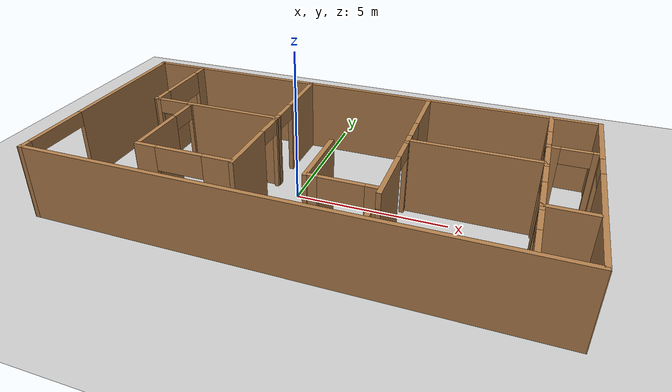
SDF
<sdf version="1.7">
 <world name="default">
  <light name="sun" type="directional">
   <pose>0 0 10 0 -0 0</pose>
   <diffuse>0.8 0.8 0.8 1</diffuse>
   <specular>0.2 0.2 0.2 1</specular>
   <attenuation>
    <range>1000</range>
    <constant>0.9</constant>
    <linear>0.01</linear>
    <quadratic>0.001</quadratic>
   </attenuation>
   <direction>-0.5 0.1 -0.9</direction>
   <spot><inner_angle>0</inner_angle><outer_angle>0</outer_angle><falloff>0</falloff></spot>
  </light>
  <model name="ground_plane">
   <static>1</static>
   <link name="link">
    <collision name="collision">
     <geometry><plane><normal>0 0 1</normal><size>100 100</size></plane></geometry>
     <surface>
      <contact><collide_bitmask>65535</collide_bitmask></contact>
      <friction><ode><mu>100</mu><mu2>50</mu2></ode></friction>
     </surface>
    </collision>
    <visual name="visual">
     <cast_shadows>0</cast_shadows>
     <geometry><plane><normal>0 0 1</normal><size>100 100</size></plane></geometry>
     <material>
      <script><uri>file://media/materials/scripts/gazebo.material</uri><name>Gazebo/Grey</name></script>
     </material>
    </visual>
   </link>
  </model>
  <gravity>0 0 -9.8</gravity>
  <magnetic_field>6e-06 2.3e-05 -4.2e-05</magnetic_field>
  <atmosphere type="adiabatic"/>
  <physics type="ode">
   <max_step_size>0.001</max_step_size>
   <real_time_factor>1</real_time_factor>
   <real_time_update_rate>1000</real_time_update_rate>
  </physics>
  <scene><ambient>0.4 0.4 0.4 1</ambient><background>0.7 0.7 0.7 1</background><shadows>1</shadows></scene>
  <audio><device>default</device></audio>
  <spherical_coordinates>
   <surface_model>EARTH_WGS84</surface_model>
   <latitude_deg>0</latitude_deg>
   <longitude_deg>0</longitude_deg>
   <elevation>0</elevation>
   <heading_deg>0</heading_deg>
  </spherical_coordinates>
  <model name="obstacles.world">
   <pose>0.850159 -0.132797 0 0 -0 0</pose>
   <link name="Wall_18">
    <collision name="Wall_18_Collision">
     <geometry><box><size>16.25 0.15 2.5</size></box></geometry>
     <pose>0 0 1.25 0 -0 0</pose>
    </collision>
    <visual name="Wall_18_Visual">
     <pose>0 0 1.25 0 -0 0</pose>
     <geometry><box><size>16.25 0.15 2.5</size></box></geometry>
     <material>
      <script><uri>file://media/materials/scripts/gazebo.material</uri><name>Gazebo/Wood</name></script>
      <ambient>1 0.764706 0.305882 1</ambient>
     </material>
     <meta><layer>0</layer></meta>
    </visual>
    <pose>0.007217 3.8 0 0 -0 0</pose>
   </link>
   <link name="Wall_19">
    <pose>8.07733 -0 0 0 -0 -1.5708</pose>
    <visual name="Wall_19_Visual_0">
     <pose>-2.6418 0 1.25 0 -0 0</pose>
     <geometry><box><size>2.46639 0.15 2.5</size></box></geometry>
     <material>
      <script><uri>file://media/materials/scripts/gazebo.material</uri><name>Gazebo/Wood</name></script>
      <ambient>1 0.764706 0.305882 1</ambient>
     </material>
     <meta><layer>0</layer></meta>
    </visual>
    <collision name="Wall_19_Collision_0">
     <geometry><box><size>2.46639 0.15 2.5</size></box></geometry>
     <pose>-2.6418 0 1.25 0 -0 0</pose>
    </collision>
    <visual name="Wall_19_Visual_1">
     <pose>1.6832 0 1.25 0 -0 0</pose>
     <geometry><box><size>4.38361 0.15 2.5</size></box></geometry>
     <material>
      <script><uri>file://media/materials/scripts/gazebo.material</uri><name>Gazebo/Wood</name></script>
      <ambient>1 0.764706 0.305882 1</ambient>
     </material>
     <meta><layer>0</layer></meta>
    </visual>
    <collision name="Wall_19_Collision_1">
     <geometry><box><size>4.38361 0.15 2.5</size></box></geometry>
     <pose>1.6832 0 1.25 0 -0 0</pose>
    </collision>
    <visual name="Wall_19_Visual_2">
     <pose>-0.958605 0 2.25 0 -0 0</pose>
     <geometry><box><size>0.9 0.15 0.5</size></box></geometry>
     <material>
      <script><uri>file://media/materials/scripts/gazebo.material</uri><name>Gazebo/Wood</name></script>
      <ambient>1 0.764706 0.305882 1</ambient>
     </material>
     <meta><layer>0</layer></meta>
    </visual>
    <collision name="Wall_19_Collision_2">
     <geometry><box><size>0.9 0.15 0.5</size></box></geometry>
     <pose>-0.958605 0 2.25 0 -0 0</pose>
    </collision>
   </link>
   <link name="Wall_20">
    <collision name="Wall_20_Collision">
     <geometry><box><size>16.2845 0.15 2.5</size></box></geometry>
     <pose>0 0 1.25 0 -0 0</pose>
    </collision>
    <visual name="Wall_20_Visual">
     <pose>0 0 1.25 0 -0 0</pose>
     <geometry><box><size>16.2845 0.15 2.5</size></box></geometry>
     <material>
      <script><uri>file://media/materials/scripts/gazebo.material</uri><name>Gazebo/Wood</name></script>
      <ambient>1 0.764706 0.305882 1</ambient>
     </material>
     <meta><layer>0</layer></meta>
    </visual>
    <pose>-0.010058 -3.8 0 0 -0 3.14159</pose>
   </link>
   <link name="Wall_21">
    <pose>-8.05722 -0 0 0 -0 1.5708</pose>
    <visual name="Wall_21_Visual_0">
     <pose>-3.66782 0 1.25 0 -0 0</pose>
     <geometry><box><size>0.414352 0.15 2.5</size></box></geometry>
     <material>
      <script><uri>file://media/materials/scripts/gazebo.material</uri><name>Gazebo/Wood</name></script>
      <ambient>1 0.764706 0.305882 1</ambient>
     </material>
     <meta><layer>0</layer></meta>
    </visual>
    <collision name="Wall_21_Collision_0">
     <geometry><box><size>0.414352 0.15 2.5</size></box></geometry>
     <pose>-3.66782 0 1.25 0 -0 0</pose>
    </collision>
    <visual name="Wall_21_Visual_1">
     <pose>1.33098 0 1.25 0 -0 0</pose>
     <geometry><box><size>5.08804 0.15 2.5</size></box></geometry>
     <material>
      <script><uri>file://media/materials/scripts/gazebo.material</uri><name>Gazebo/Wood</name></script>
      <ambient>1 0.764706 0.305882 1</ambient>
     </material>
     <meta><layer>0</layer></meta>
    </visual>
    <collision name="Wall_21_Collision_1">
     <geometry><box><size>5.08804 0.15 2.5</size></box></geometry>
     <pose>1.33098 0 1.25 0 -0 0</pose>
    </collision>
    <visual name="Wall_21_Visual_2">
     <pose>-2.33684 0 2.25 0 -0 0</pose>
     <geometry><box><size>2.24761 0.15 0.5</size></box></geometry>
     <material>
      <script><uri>file://media/materials/scripts/gazebo.material</uri><name>Gazebo/Wood</name></script>
      <ambient>1 0.764706 0.305882 1</ambient>
     </material>
     <meta><layer>0</layer></meta>
    </visual>
    <collision name="Wall_21_Collision_2">
     <geometry><box><size>2.24761 0.15 0.5</size></box></geometry>
     <pose>-2.33684 0 2.25 0 -0 0</pose>
    </collision>
   </link>
   <link name="Wall_24">
    <pose>-6.28501 2.23251 0 0 -0 -1.5708</pose>
    <visual name="Wall_24_Visual_0">
     <pose>-1.30855 0 1.25 0 -0 0</pose>
     <geometry><box><size>0.632901 0.15 2.5</size></box></geometry>
     <material>
      <script><uri>file://media/materials/scripts/gazebo.material</uri><name>Gazebo/Wood</name></script>
      <ambient>1 1 1 1</ambient>
     </material>
     <meta><layer>0</layer></meta>
    </visual>
    <collision name="Wall_24_Collision_0">
     <geometry><box><size>0.632901 0.15 2.5</size></box></geometry>
     <pose>-1.30855 0 1.25 0 -0 0</pose>
    </collision>
    <visual name="Wall_24_Visual_1">
     <pose>0.31645 0 0.45 0 -0 0</pose>
     <geometry><box><size>2.6171 0.15 0.9</size></box></geometry>
     <material>
      <script><uri>file://media/materials/scripts/gazebo.material</uri><name>Gazebo/Wood</name></script>
      <ambient>1 1 1 1</ambient>
     </material>
     <meta><layer>0</layer></meta>
    </visual>
    <collision name="Wall_24_Collision_1">
     <geometry><box><size>2.6171 0.15 0.9</size></box></geometry>
     <pose>0.31645 0 0.45 0 -0 0</pose>
    </collision>
    <visual name="Wall_24_Visual_2">
     <pose>1.25178 0 1.7 0 -0 0</pose>
     <geometry><box><size>0.746441 0.15 1.6</size></box></geometry>
     <material>
      <script><uri>file://media/materials/scripts/gazebo.material</uri><name>Gazebo/Wood</name></script>
      <ambient>1 1 1 1</ambient>
     </material>
     <meta><layer>0</layer></meta>
    </visual>
    <collision name="Wall_24_Collision_2">
     <geometry><box><size>0.746441 0.15 1.6</size></box></geometry>
     <pose>1.25178 0 1.7 0 -0 0</pose>
    </collision>
    <visual name="Wall_24_Visual_3">
     <pose>-0.05677 0 2.1 0 -0 0</pose>
     <geometry><box><size>1.87066 0.15 0.8</size></box></geometry>
     <material>
      <script><uri>file://media/materials/scripts/gazebo.material</uri><name>Gazebo/Wood</name></script>
      <ambient>1 1 1 1</ambient>
     </material>
     <meta><layer>0</layer></meta>
    </visual>
    <collision name="Wall_24_Collision_3">
     <geometry><box><size>1.87066 0.15 0.8</size></box></geometry>
     <pose>-0.05677 0 2.1 0 -0 0</pose>
    </collision>
   </link>
   <link name="Wall_25">
    <pose>-4.02814 0.672453 0 0 -0 -0.004417</pose>
    <visual name="Wall_25_Visual_0">
     <pose>-2.23196 0 1.25 0 -0 0</pose>
     <geometry><box><size>0.240097 0.15 2.5</size></box></geometry>
     <material>
      <script><uri>file://media/materials/scripts/gazebo.material</uri><name>Gazebo/Wood</name></script>
      <ambient>1 1 1 1</ambient>
     </material>
     <meta><layer>0</layer></meta>
    </visual>
    <collision name="Wall_25_Collision_0">
     <geometry><box><size>0.240097 0.15 2.5</size></box></geometry>
     <pose>-2.23196 0 1.25 0 -0 0</pose>
    </collision>
    <visual name="Wall_25_Visual_1">
     <pose>0.650501 0 1.25 0 -0 0</pose>
     <geometry><box><size>3.40302 0.15 2.5</size></box></geometry>
     <material>
      <script><uri>file://media/materials/scripts/gazebo.material</uri><name>Gazebo/Wood</name></script>
      <ambient>1 1 1 1</ambient>
     </material>
     <meta><layer>0</layer></meta>
    </visual>
    <collision name="Wall_25_Collision_1">
     <geometry><box><size>3.40302 0.15 2.5</size></box></geometry>
     <pose>0.650501 0 1.25 0 -0 0</pose>
    </collision>
    <visual name="Wall_25_Visual_2">
     <pose>-1.58146 0 2.25 0 -0 0</pose>
     <geometry><box><size>1.0609 0.15 0.5</size></box></geometry>
     <material>
      <script><uri>file://media/materials/scripts/gazebo.material</uri><name>Gazebo/Wood</name></script>
      <ambient>1 1 1 1</ambient>
     </material>
     <meta><layer>0</layer></meta>
    </visual>
    <collision name="Wall_25_Collision_2">
     <geometry><box><size>1.0609 0.15 0.5</size></box></geometry>
     <pose>-1.58146 0 2.25 0 -0 0</pose>
    </collision>
   </link>
   <link name="Wall_26">
    <pose>-1.77126 2.2124 0 0 -0 1.5708</pose>
    <visual name="Wall_26_Visual_0">
     <pose>-1.49184 0 1.25 0 -0 0</pose>
     <geometry><box><size>0.266317 0.15 2.5</size></box></geometry>
     <material>
      <script><uri>file://media/materials/scripts/gazebo.material</uri><name>Gazebo/Wood</name></script>
      <ambient>1 1 1 1</ambient>
     </material>
     <meta><layer>0</layer></meta>
    </visual>
    <collision name="Wall_26_Collision_0">
     <geometry><box><size>0.266317 0.15 2.5</size></box></geometry>
     <pose>-1.49184 0 1.25 0 -0 0</pose>
    </collision>
    <visual name="Wall_26_Visual_1">
     <pose>0.583158 0 1.25 0 -0 0</pose>
     <geometry><box><size>2.08368 0.15 2.5</size></box></geometry>
     <material>
      <script><uri>file://media/materials/scripts/gazebo.material</uri><name>Gazebo/Wood</name></script>
      <ambient>1 1 1 1</ambient>
     </material>
     <meta><layer>0</layer></meta>
    </visual>
    <collision name="Wall_26_Collision_1">
     <geometry><box><size>2.08368 0.15 2.5</size></box></geometry>
     <pose>0.583158 0 1.25 0 -0 0</pose>
    </collision>
    <visual name="Wall_26_Visual_2">
     <pose>-0.908683 0 2.25 0 -0 0</pose>
     <geometry><box><size>0.9 0.15 0.5</size></box></geometry>
     <material>
      <script><uri>file://media/materials/scripts/gazebo.material</uri><name>Gazebo/Wood</name></script>
      <ambient>1 1 1 1</ambient>
     </material>
     <meta><layer>0</layer></meta>
    </visual>
    <collision name="Wall_26_Collision_2">
     <geometry><box><size>0.9 0.15 0.5</size></box></geometry>
     <pose>-0.908683 0 2.25 0 -0 0</pose>
    </collision>
   </link>
   <link name="Wall_28">
    <pose>-4.95183 -0.89914 0 0 -0 -1.57757</pose>
    <visual name="Wall_28_Visual_0">
     <pose>-1.48303 0 1.25 0 -0 0</pose>
     <geometry><box><size>0.154694 0.15 2.5</size></box></geometry>
     <material>
      <script><uri>file://media/materials/scripts/gazebo.material</uri><name>Gazebo/Wood</name></script>
      <ambient>1 1 1 1</ambient>
     </material>
     <meta><layer>0</layer></meta>
    </visual>
    <collision name="Wall_28_Collision_0">
     <geometry><box><size>0.154694 0.15 2.5</size></box></geometry>
     <pose>-1.48303 0 1.25 0 -0 0</pose>
    </collision>
    <visual name="Wall_28_Visual_1">
     <pose>0.527347 0 1.25 0 -0 0</pose>
     <geometry><box><size>2.06606 0.15 2.5</size></box></geometry>
     <material>
      <script><uri>file://media/materials/scripts/gazebo.material</uri><name>Gazebo/Wood</name></script>
      <ambient>1 1 1 1</ambient>
     </material>
     <meta><layer>0</layer></meta>
    </visual>
    <collision name="Wall_28_Collision_1">
     <geometry><box><size>2.06606 0.15 2.5</size></box></geometry>
     <pose>0.527347 0 1.25 0 -0 0</pose>
    </collision>
    <visual name="Wall_28_Visual_2">
     <pose>-0.955681 0 2.25 0 -0 0</pose>
     <geometry><box><size>0.9 0.15 0.5</size></box></geometry>
     <material>
      <script><uri>file://media/materials/scripts/gazebo.material</uri><name>Gazebo/Wood</name></script>
      <ambient>1 1 1 1</ambient>
     </material>
     <meta><layer>0</layer></meta>
    </visual>
    <collision name="Wall_28_Collision_2">
     <geometry><box><size>0.9 0.15 0.5</size></box></geometry>
     <pose>-0.955681 0 2.25 0 -0 0</pose>
    </collision>
   </link>
   <link name="Wall_35">
    <pose>6.60167 2.75574 0 0 -0 -1.5708</pose>
    <visual name="Wall_35_Visual_0">
     <pose>-0.541344 0 1.25 0 -0 0</pose>
     <geometry><box><size>1.15583 0.15 2.5</size></box></geometry>
     <material>
      <script><uri>file://media/materials/scripts/gazebo.material</uri><name>Gazebo/Wood</name></script>
      <ambient>1 1 1 1</ambient>
     </material>
     <meta><layer>0</layer></meta>
    </visual>
    <collision name="Wall_35_Collision_0">
     <geometry><box><size>1.15583 0.15 2.5</size></box></geometry>
     <pose>-0.541344 0 1.25 0 -0 0</pose>
    </collision>
    <visual name="Wall_35_Visual_1">
     <pose>1.02792 0 1.25 0 -0 0</pose>
     <geometry><box><size>0.182688 0.15 2.5</size></box></geometry>
     <material>
      <script><uri>file://media/materials/scripts/gazebo.material</uri><name>Gazebo/Wood</name></script>
      <ambient>1 1 1 1</ambient>
     </material>
     <meta><layer>0</layer></meta>
    </visual>
    <collision name="Wall_35_Collision_1">
     <geometry><box><size>0.182688 0.15 2.5</size></box></geometry>
     <pose>1.02792 0 1.25 0 -0 0</pose>
    </collision>
    <visual name="Wall_35_Visual_2">
     <pose>0.486573 0 2.25 0 -0 0</pose>
     <geometry><box><size>0.9 0.15 0.5</size></box></geometry>
     <material>
      <script><uri>file://media/materials/scripts/gazebo.material</uri><name>Gazebo/Wood</name></script>
      <ambient>1 1 1 1</ambient>
     </material>
     <meta><layer>0</layer></meta>
    </visual>
    <collision name="Wall_35_Collision_2">
     <geometry><box><size>0.9 0.15 0.5</size></box></geometry>
     <pose>0.486573 0 2.25 0 -0 0</pose>
    </collision>
   </link>
   <link name="Wall_38">
    <pose>7.28989 1.69136 0 0 -0 0</pose>
    <visual name="Wall_38_Visual_0">
     <pose>-0.560613 0 1.25 0 -0 0</pose>
     <geometry><box><size>0.405224 0.15 2.5</size></box></geometry>
     <material>
      <script><uri>file://media/materials/scripts/gazebo.material</uri><name>Gazebo/Wood</name></script>
      <ambient>1 1 1 1</ambient>
     </material>
     <meta><layer>0</layer></meta>
    </visual>
    <collision name="Wall_38_Collision_0">
     <geometry><box><size>0.405224 0.15 2.5</size></box></geometry>
     <pose>-0.560613 0 1.25 0 -0 0</pose>
    </collision>
    <visual name="Wall_38_Visual_1">
     <pose>0.652612 0 1.25 0 -0 0</pose>
     <geometry><box><size>0.221226 0.15 2.5</size></box></geometry>
     <material>
      <script><uri>file://media/materials/scripts/gazebo.material</uri><name>Gazebo/Wood</name></script>
      <ambient>1 1 1 1</ambient>
     </material>
     <meta><layer>0</layer></meta>
    </visual>
    <collision name="Wall_38_Collision_1">
     <geometry><box><size>0.221226 0.15 2.5</size></box></geometry>
     <pose>0.652612 0 1.25 0 -0 0</pose>
    </collision>
    <visual name="Wall_38_Visual_2">
     <pose>0.091999 0 2.25 0 -0 0</pose>
     <geometry><box><size>0.9 0.15 0.5</size></box></geometry>
     <material>
      <script><uri>file://media/materials/scripts/gazebo.material</uri><name>Gazebo/Wood</name></script>
      <ambient>1 1 1 1</ambient>
     </material>
     <meta><layer>0</layer></meta>
    </visual>
    <collision name="Wall_38_Collision_2">
     <geometry><box><size>0.9 0.15 0.5</size></box></geometry>
     <pose>0.091999 0 2.25 0 -0 0</pose>
    </collision>
   </link>
   <link name="Wall_40">
    <pose>6.60466 -2.66255 0 0 -0 -1.5708</pose>
    <visual name="Wall_40_Visual_0">
     <pose>-0.905097 0 1.25 0 -0 0</pose>
     <geometry><box><size>0.339239 0.15 2.5</size></box></geometry>
     <material>
      <script><uri>file://media/materials/scripts/gazebo.material</uri><name>Gazebo/Wood</name></script>
      <ambient>1 1 1 1</ambient>
     </material>
     <meta><layer>0</layer></meta>
    </visual>
    <collision name="Wall_40_Collision_0">
     <geometry><box><size>0.339239 0.15 2.5</size></box></geometry>
     <pose>-0.905097 0 1.25 0 -0 0</pose>
    </collision>
    <visual name="Wall_40_Visual_1">
     <pose>0.619619 0 1.25 0 -0 0</pose>
     <geometry><box><size>0.910193 0.15 2.5</size></box></geometry>
     <material>
      <script><uri>file://media/materials/scripts/gazebo.material</uri><name>Gazebo/Wood</name></script>
      <ambient>1 1 1 1</ambient>
     </material>
     <meta><layer>0</layer></meta>
    </visual>
    <collision name="Wall_40_Collision_1">
     <geometry><box><size>0.910193 0.15 2.5</size></box></geometry>
     <pose>0.619619 0 1.25 0 -0 0</pose>
    </collision>
    <visual name="Wall_40_Visual_2">
     <pose>-0.285477 0 2.25 0 -0 0</pose>
     <geometry><box><size>0.9 0.15 0.5</size></box></geometry>
     <material>
      <script><uri>file://media/materials/scripts/gazebo.material</uri><name>Gazebo/Wood</name></script>
      <ambient>1 1 1 1</ambient>
     </material>
     <meta><layer>0</layer></meta>
    </visual>
    <collision name="Wall_40_Collision_2">
     <geometry><box><size>0.9 0.15 0.5</size></box></geometry>
     <pose>-0.285477 0 2.25 0 -0 0</pose>
    </collision>
   </link>
   <link name="Wall_42">
    <collision name="Wall_42_Collision">
     <geometry><box><size>1.5 0.15 2.5</size></box></geometry>
     <pose>0 0 1.25 0 -0 0</pose>
    </collision>
    <visual name="Wall_42_Visual">
     <pose>0 0 1.25 0 -0 0</pose>
     <geometry><box><size>1.5 0.15 2.5</size></box></geometry>
     <material>
      <script><uri>file://media/materials/scripts/gazebo.material</uri><name>Gazebo/Wood</name></script>
      <ambient>1 1 1 1</ambient>
     </material>
     <meta><layer>0</layer></meta>
    </visual>
    <pose>7.27965 -1.68294 0 0 -0 0</pose>
   </link>
   <link name="Wall_44">
    <pose>2.58481 2.15297 0 0 -0 -1.56428</pose>
    <visual name="Wall_44_Visual_0">
     <pose>-0.650354 0 1.25 0 -0 0</pose>
     <geometry><box><size>1.93788 0.15 2.5</size></box></geometry>
     <material>
      <script><uri>file://media/materials/scripts/gazebo.material</uri><name>Gazebo/Wood</name></script>
      <ambient>1 1 1 1</ambient>
     </material>
     <meta><layer>0</layer></meta>
    </visual>
    <collision name="Wall_44_Collision_0">
     <geometry><box><size>1.93788 0.15 2.5</size></box></geometry>
     <pose>-0.650354 0 1.25 0 -0 0</pose>
    </collision>
    <visual name="Wall_44_Visual_1">
     <pose>1.41894 0 1.25 0 -0 0</pose>
     <geometry><box><size>0.400708 0.15 2.5</size></box></geometry>
     <material>
      <script><uri>file://media/materials/scripts/gazebo.material</uri><name>Gazebo/Wood</name></script>
      <ambient>1 1 1 1</ambient>
     </material>
     <meta><layer>0</layer></meta>
    </visual>
    <collision name="Wall_44_Collision_1">
     <geometry><box><size>0.400708 0.15 2.5</size></box></geometry>
     <pose>1.41894 0 1.25 0 -0 0</pose>
    </collision>
    <visual name="Wall_44_Visual_2">
     <pose>0.768586 0 2.25 0 -0 0</pose>
     <geometry><box><size>0.9 0.15 0.5</size></box></geometry>
     <material>
      <script><uri>file://media/materials/scripts/gazebo.material</uri><name>Gazebo/Wood</name></script>
      <ambient>1 1 1 1</ambient>
     </material>
     <meta><layer>0</layer></meta>
    </visual>
    <collision name="Wall_44_Collision_2">
     <geometry><box><size>0.9 0.15 0.5</size></box></geometry>
     <pose>0.768586 0 2.25 0 -0 0</pose>
    </collision>
   </link>
   <link name="Wall_46">
    <collision name="Wall_46_Collision">
     <geometry><box><size>1.25 0.15 2.5</size></box></geometry>
     <pose>0 0 1.25 0 -0 0</pose>
    </collision>
    <visual name="Wall_46_Visual">
     <pose>0 0 1.25 0 -0 0</pose>
     <geometry><box><size>1.25 0.15 2.5</size></box></geometry>
     <material>
      <script><uri>file://media/materials/scripts/gazebo.material</uri><name>Gazebo/Wood</name></script>
      <ambient>1 1 1 1</ambient>
     </material>
     <meta><layer>0</layer></meta>
    </visual>
    <pose>6.60167 1.16148 0 0 -0 1.5708</pose>
   </link>
   <link name="Wall_48">
    <collision name="Wall_48_Collision">
     <geometry><box><size>4.15681 0.15 2.5</size></box></geometry>
     <pose>0 0 1.25 0 -0 0</pose>
    </collision>
    <visual name="Wall_48_Visual">
     <pose>0 0 1.25 0 -0 0</pose>
     <geometry><box><size>4.15681 0.15 2.5</size></box></geometry>
     <material>
      <script><uri>file://media/materials/scripts/gazebo.material</uri><name>Gazebo/Wood</name></script>
      <ambient>1 1 1 1</ambient>
     </material>
     <meta><layer>0</layer></meta>
    </visual>
    <pose>4.59827 0.630204 0 0 -0 0.000692</pose>
   </link>
   <link name="Wall_50">
    <pose>2.59486 -1.53181 0 0 -0 -1.5708</pose>
    <visual name="Wall_50_Visual_0">
     <pose>-2.07671 0 1.25 0 -0 0</pose>
     <geometry><box><size>0.277601 0.15 2.5</size></box></geometry>
     <material>
      <script><uri>file://media/materials/scripts/gazebo.material</uri><name>Gazebo/Wood</name></script>
      <ambient>1 1 1 1</ambient>
     </material>
     <meta><layer>0</layer></meta>
    </visual>
    <collision name="Wall_50_Collision_0">
     <geometry><box><size>0.277601 0.15 2.5</size></box></geometry>
     <pose>-2.07671 0 1.25 0 -0 0</pose>
    </collision>
    <visual name="Wall_50_Visual_1">
     <pose>0.020608 0 1.25 0 -0 0</pose>
     <geometry><box><size>2.11704 0.15 2.5</size></box></geometry>
     <material>
      <script><uri>file://media/materials/scripts/gazebo.material</uri><name>Gazebo/Wood</name></script>
      <ambient>1 1 1 1</ambient>
     </material>
     <meta><layer>0</layer></meta>
    </visual>
    <collision name="Wall_50_Collision_1">
     <geometry><box><size>2.11704 0.15 2.5</size></box></geometry>
     <pose>0.020608 0 1.25 0 -0 0</pose>
    </collision>
    <visual name="Wall_50_Visual_2">
     <pose>2.09732 0 1.25 0 -0 0</pose>
     <geometry><box><size>0.236386 0.15 2.5</size></box></geometry>
     <material>
      <script><uri>file://media/materials/scripts/gazebo.material</uri><name>Gazebo/Wood</name></script>
      <ambient>1 1 1 1</ambient>
     </material>
     <meta><layer>0</layer></meta>
    </visual>
    <collision name="Wall_50_Collision_2">
     <geometry><box><size>0.236386 0.15 2.5</size></box></geometry>
     <pose>2.09732 0 1.25 0 -0 0</pose>
    </collision>
    <visual name="Wall_50_Visual_3">
     <pose>-1.48791 0 2.25 0 -0 0</pose>
     <geometry><box><size>0.9 0.15 0.5</size></box></geometry>
     <material>
      <script><uri>file://media/materials/scripts/gazebo.material</uri><name>Gazebo/Wood</name></script>
      <ambient>1 1 1 1</ambient>
     </material>
     <meta><layer>0</layer></meta>
    </visual>
    <collision name="Wall_50_Collision_3">
     <geometry><box><size>0.9 0.15 0.5</size></box></geometry>
     <pose>-1.48791 0 2.25 0 -0 0</pose>
    </collision>
    <visual name="Wall_50_Visual_4">
     <pose>1.07913 0 2.25 0 -0 0</pose>
     <geometry><box><size>0 0.15 0.5</size></box></geometry>
     <material>
      <script><uri>file://media/materials/scripts/gazebo.material</uri><name>Gazebo/Wood</name></script>
      <ambient>1 1 1 1</ambient>
     </material>
     <meta><layer>0</layer></meta>
    </visual>
    <collision name="Wall_50_Collision_4">
     <geometry><box><size>0 0.15 0.5</size></box></geometry>
     <pose>1.07913 0 2.25 0 -0 0</pose>
    </collision>
   </link>
   <link name="Wall_52">
    <pose>6.60316 -0.525678 0 0 -0 -1.56948</pose>
    <visual name="Wall_52_Visual_0">
     <pose>-1.07198 0 1.25 0 -0 0</pose>
     <geometry><box><size>0.28034 0.15 2.5</size></box></geometry>
     <material>
      <script><uri>file://media/materials/scripts/gazebo.material</uri><name>Gazebo/Wood</name></script>
      <ambient>1 1 1 1</ambient>
     </material>
     <meta><layer>0</layer></meta>
    </visual>
    <collision name="Wall_52_Collision_0">
     <geometry><box><size>0.28034 0.15 2.5</size></box></geometry>
     <pose>-1.07198 0 1.25 0 -0 0</pose>
    </collision>
    <visual name="Wall_52_Visual_1">
     <pose>0.59017 0 1.25 0 -0 0</pose>
     <geometry><box><size>1.24397 0.15 2.5</size></box></geometry>
     <material>
      <script><uri>file://media/materials/scripts/gazebo.material</uri><name>Gazebo/Wood</name></script>
      <ambient>1 1 1 1</ambient>
     </material>
     <meta><layer>0</layer></meta>
    </visual>
    <collision name="Wall_52_Collision_1">
     <geometry><box><size>1.24397 0.15 2.5</size></box></geometry>
     <pose>0.59017 0 1.25 0 -0 0</pose>
    </collision>
    <visual name="Wall_52_Visual_2">
     <pose>-0.481815 0 2.25 0 -0 0</pose>
     <geometry><box><size>0.9 0.15 0.5</size></box></geometry>
     <material>
      <script><uri>file://media/materials/scripts/gazebo.material</uri><name>Gazebo/Wood</name></script>
      <ambient>1 1 1 1</ambient>
     </material>
     <meta><layer>0</layer></meta>
    </visual>
    <collision name="Wall_52_Collision_2">
     <geometry><box><size>0.9 0.15 0.5</size></box></geometry>
     <pose>-0.481815 0 2.25 0 -0 0</pose>
    </collision>
   </link>
   <link name="Wall_54">
    <pose>1.46692 -2.33684 0 0 -0 0</pose>
    <visual name="Wall_54_Visual_0">
     <pose>-0.886854 0 1.25 0 -0 0</pose>
     <geometry><box><size>0.436064 0.15 2.5</size></box></geometry>
     <material>
      <script><uri>file://media/materials/scripts/gazebo.material</uri><name>Gazebo/Wood</name></script>
      <ambient>1 1 1 1</ambient>
     </material>
     <meta><layer>0</layer></meta>
    </visual>
    <collision name="Wall_54_Collision_0">
     <geometry><box><size>0.436064 0.15 2.5</size></box></geometry>
     <pose>-0.886854 0 1.25 0 -0 0</pose>
    </collision>
    <visual name="Wall_54_Visual_1">
     <pose>0.218032 0 0.5 0 -0 0</pose>
     <geometry><box><size>1.77371 0.15 1</size></box></geometry>
     <material>
      <script><uri>file://media/materials/scripts/gazebo.material</uri><name>Gazebo/Wood</name></script>
      <ambient>1 1 1 1</ambient>
     </material>
     <meta><layer>0</layer></meta>
    </visual>
    <collision name="Wall_54_Collision_1">
     <geometry><box><size>1.77371 0.15 1</size></box></geometry>
     <pose>0.218032 0 0.5 0 -0 0</pose>
    </collision>
    <visual name="Wall_54_Visual_2">
     <pose>0.893344 0 1.75 0 -0 0</pose>
     <geometry><box><size>0.423085 0.15 1.5</size></box></geometry>
     <material>
      <script><uri>file://media/materials/scripts/gazebo.material</uri><name>Gazebo/Wood</name></script>
      <ambient>1 1 1 1</ambient>
     </material>
     <meta><layer>0</layer></meta>
    </visual>
    <collision name="Wall_54_Collision_2">
     <geometry><box><size>0.423085 0.15 1.5</size></box></geometry>
     <pose>0.893344 0 1.75 0 -0 0</pose>
    </collision>
    <visual name="Wall_54_Visual_3">
     <pose>0.00649 0 2.15 0 -0 0</pose>
     <geometry><box><size>1.35062 0.15 0.7</size></box></geometry>
     <material>
      <script><uri>file://media/materials/scripts/gazebo.material</uri><name>Gazebo/Wood</name></script>
      <ambient>1 1 1 1</ambient>
     </material>
     <meta><layer>0</layer></meta>
    </visual>
    <collision name="Wall_54_Collision_3">
     <geometry><box><size>1.35062 0.15 0.7</size></box></geometry>
     <pose>0.00649 0 2.15 0 -0 0</pose>
    </collision>
   </link>
   <link name="Wall_56">
    <collision name="Wall_56_Collision">
     <geometry><box><size>2.26148 0.15 2.5</size></box></geometry>
     <pose>0 0 1.25 0 -0 0</pose>
    </collision>
    <visual name="Wall_56_Visual">
     <pose>0 0 1.25 0 -0 0</pose>
     <geometry><box><size>2.26148 0.15 2.5</size></box></geometry>
     <material>
      <script><uri>file://media/materials/scripts/gazebo.material</uri><name>Gazebo/Wood</name></script>
      <ambient>1 1 1 1</ambient>
     </material>
     <meta><layer>0</layer></meta>
    </visual>
    <pose>0.437032 -1.30122 0 0 -0 1.5708</pose>
   </link>
   <link name="Wall_58">
    <pose>-3.41189 -2.40459 0 0 -0 3.14159</pose>
    <visual name="Wall_58_Visual_0">
     <pose>-1.14565 0 1.25 0 -0 0</pose>
     <geometry><box><size>0.958708 0.15 2.5</size></box></geometry>
     <material>
      <script><uri>file://media/materials/scripts/gazebo.material</uri><name>Gazebo/Wood</name></script>
      <ambient>1 1 1 1</ambient>
     </material>
     <meta><layer>0</layer></meta>
    </visual>
    <collision name="Wall_58_Collision_0">
     <geometry><box><size>0.958708 0.15 2.5</size></box></geometry>
     <pose>-1.14565 0 1.25 0 -0 0</pose>
    </collision>
    <visual name="Wall_58_Visual_1">
     <pose>0.479354 0 0.45 0 -0 0</pose>
     <geometry><box><size>2.29129 0.15 0.9</size></box></geometry>
     <material>
      <script><uri>file://media/materials/scripts/gazebo.material</uri><name>Gazebo/Wood</name></script>
      <ambient>1 1 1 1</ambient>
     </material>
     <meta><layer>0</layer></meta>
    </visual>
    <collision name="Wall_58_Collision_1">
     <geometry><box><size>2.29129 0.15 0.9</size></box></geometry>
     <pose>0.479354 0 0.45 0 -0 0</pose>
    </collision>
    <visual name="Wall_58_Visual_2">
     <pose>1.26185 0 1.7 0 -0 0</pose>
     <geometry><box><size>0.726292 0.15 1.6</size></box></geometry>
     <material>
      <script><uri>file://media/materials/scripts/gazebo.material</uri><name>Gazebo/Wood</name></script>
      <ambient>1 1 1 1</ambient>
     </material>
     <meta><layer>0</layer></meta>
    </visual>
    <collision name="Wall_58_Collision_2">
     <geometry><box><size>0.726292 0.15 1.6</size></box></geometry>
     <pose>1.26185 0 1.7 0 -0 0</pose>
    </collision>
    <visual name="Wall_58_Visual_3">
     <pose>0.116208 0 2.1 0 -0 0</pose>
     <geometry><box><size>1.565 0.15 0.8</size></box></geometry>
     <material>
      <script><uri>file://media/materials/scripts/gazebo.material</uri><name>Gazebo/Wood</name></script>
      <ambient>1 1 1 1</ambient>
     </material>
     <meta><layer>0</layer></meta>
    </visual>
    <collision name="Wall_58_Collision_3">
     <geometry><box><size>1.565 0.15 0.8</size></box></geometry>
     <pose>0.116208 0 2.1 0 -0 0</pose>
    </collision>
   </link>
   <link name="Wall_60">
    <pose>-1.77126 -0.887604 0 0 -0 -1.5708</pose>
    <visual name="Wall_60_Visual_0">
     <pose>-1.49958 0 1.25 0 -0 0</pose>
     <geometry><box><size>0.250838 0.15 2.5</size></box></geometry>
     <material>
      <script><uri>file://media/materials/scripts/gazebo.material</uri><name>Gazebo/Wood</name></script>
      <ambient>1 1 1 1</ambient>
     </material>
     <meta><layer>0</layer></meta>
    </visual>
    <collision name="Wall_60_Collision_0">
     <geometry><box><size>0.250838 0.15 2.5</size></box></geometry>
     <pose>-1.49958 0 1.25 0 -0 0</pose>
    </collision>
    <visual name="Wall_60_Visual_1">
     <pose>0.575419 0 1.25 0 -0 0</pose>
     <geometry><box><size>2.09916 0.15 2.5</size></box></geometry>
     <material>
      <script><uri>file://media/materials/scripts/gazebo.material</uri><name>Gazebo/Wood</name></script>
      <ambient>1 1 1 1</ambient>
     </material>
     <meta><layer>0</layer></meta>
    </visual>
    <collision name="Wall_60_Collision_1">
     <geometry><box><size>2.09916 0.15 2.5</size></box></geometry>
     <pose>0.575419 0 1.25 0 -0 0</pose>
    </collision>
    <visual name="Wall_60_Visual_2">
     <pose>-0.924162 0 2.25 0 -0 0</pose>
     <geometry><box><size>0.9 0.15 0.5</size></box></geometry>
     <material>
      <script><uri>file://media/materials/scripts/gazebo.material</uri><name>Gazebo/Wood</name></script>
      <ambient>1 1 1 1</ambient>
     </material>
     <meta><layer>0</layer></meta>
    </visual>
    <collision name="Wall_60_Collision_2">
     <geometry><box><size>0.9 0.15 0.5</size></box></geometry>
     <pose>-0.924162 0 2.25 0 -0 0</pose>
    </collision>
   </link>
   <static>1</static>
  </model>
 </world>
</sdf>
